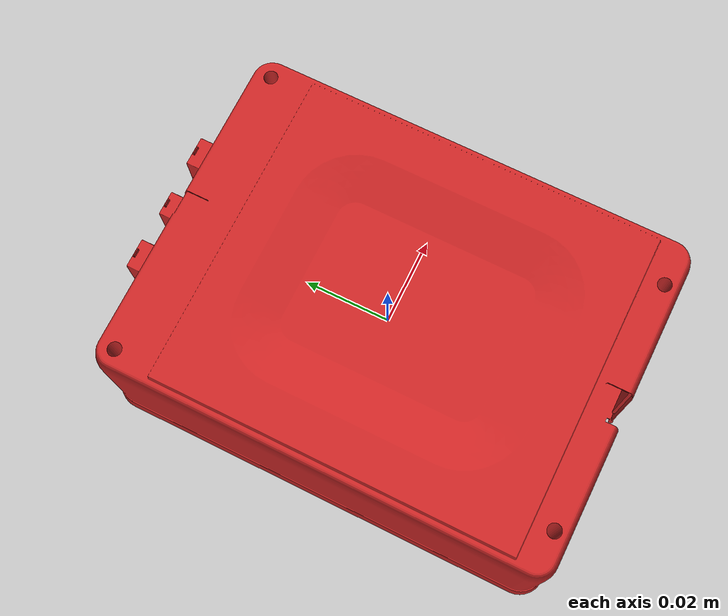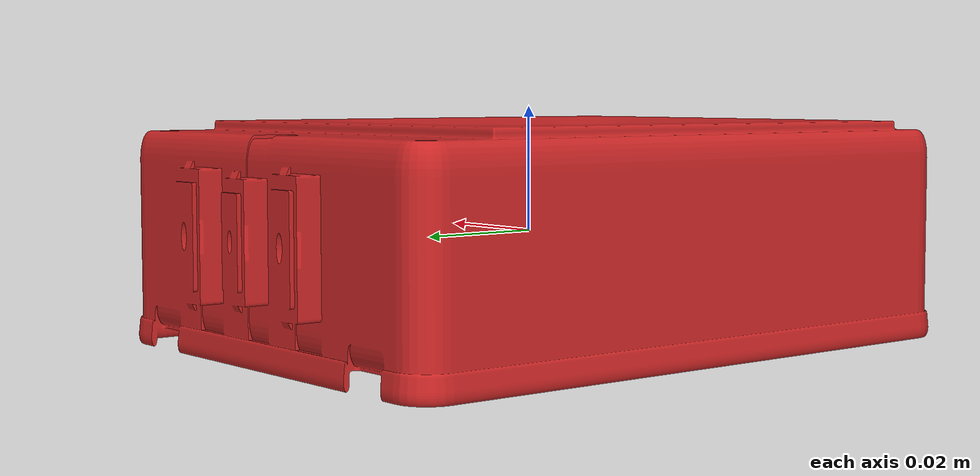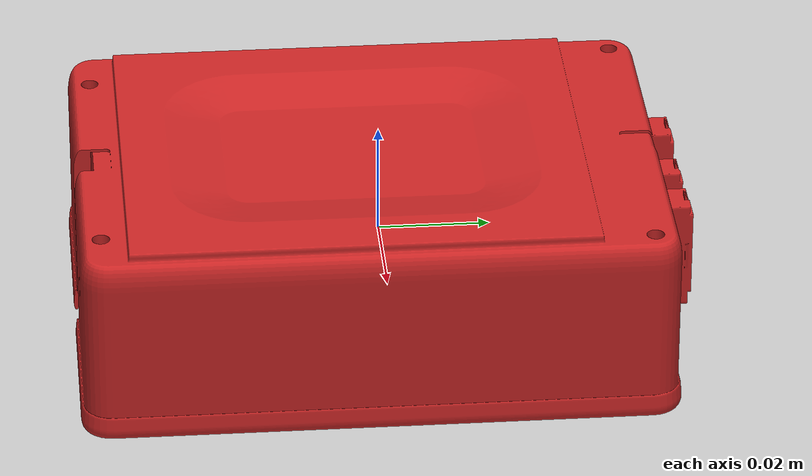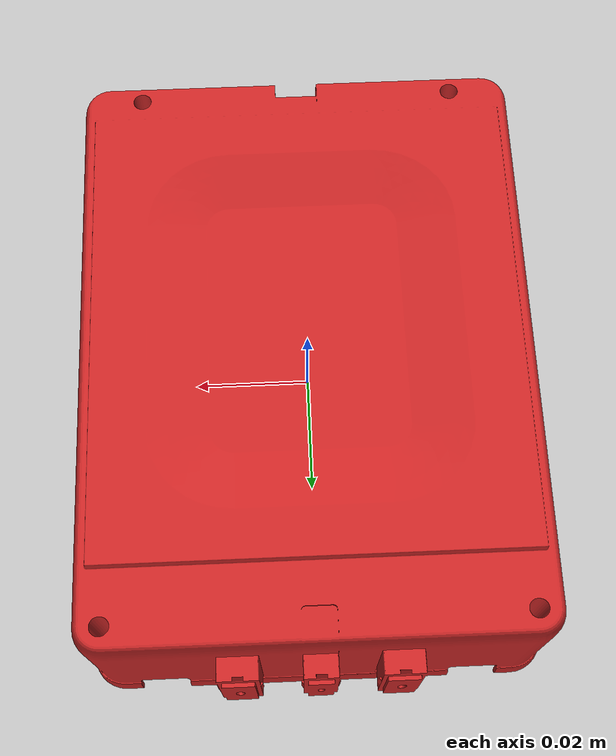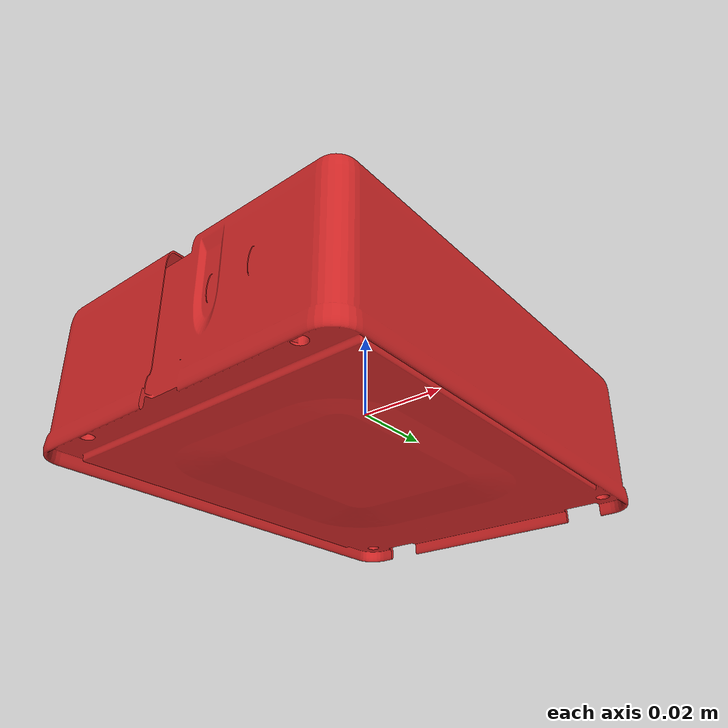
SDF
<?xml version="1.0" ?>

<sdf version="1.5">
  <model name="object_c">
    <static>false</static>
    <link name="leaf_cell_link">
      <collision name="collision">
        <geometry>
      	  <box>
            <size> 0.08 0.11 0.0353</size>
          </box>
        </geometry>
		<surface>
			<friction>
				<ode>
					<mu>0.5</mu>
				</ode>
			</friction>
			<contact>
				<ode>
					<min_depth>0.001</min_depth>
				</ode>
			</contact>
		</surface>
      </collision>
      <visual name="visual">
        <geometry>
          <mesh>
            <uri>model://object_c/meshes/object_c.dae</uri>
          </mesh>
        </geometry>
        <material>
		    <script>
		        <uri>file://media/materials/scripts/gazebo.material</uri>
		        <name>Gazebo/Red</name>
		    </script>
        </material>
      </visual>
	  <inertial>
			<pose>0.0 0.0 0.0 0.0 0.0 0.0</pose>
        <mass>0.1</mass>
		    <inertia>
    		  <ixx>0.000111217</ixx>
		      <iyy>0.000063717</iyy>
		      <izz>0.000154167</izz>
		      <ixy>0.0</ixy>
		      <ixz>0.0</ixz>
		      <iyz>0.0</iyz>
		    </inertia>
	  </inertial>
	</link>
  </model>
</sdf>
